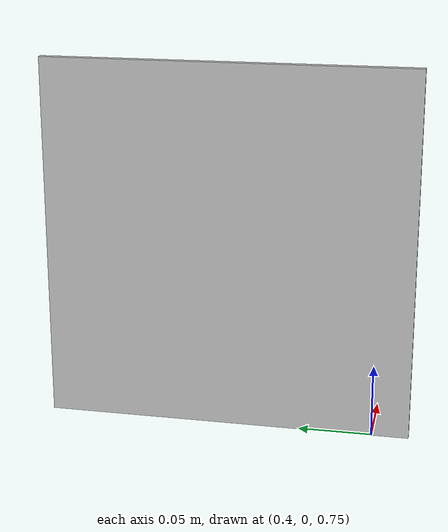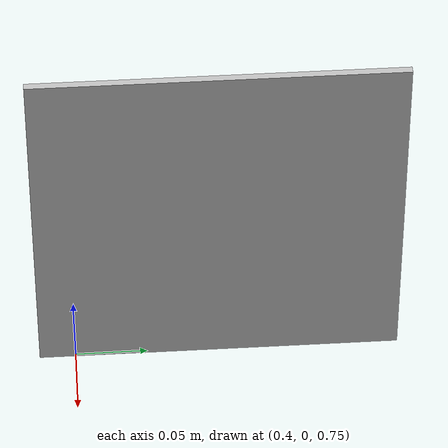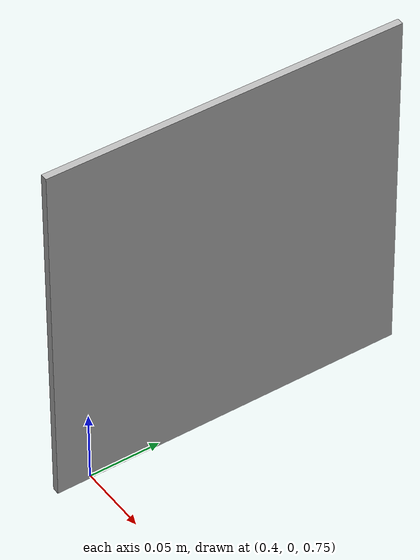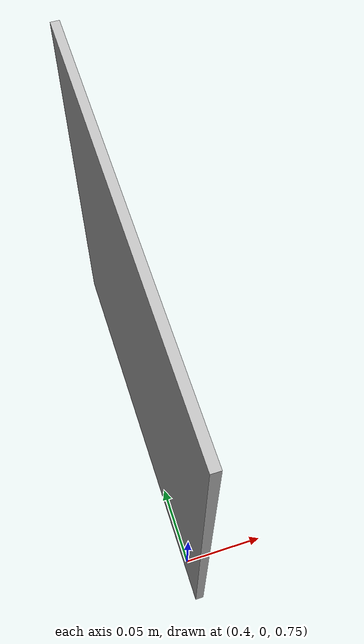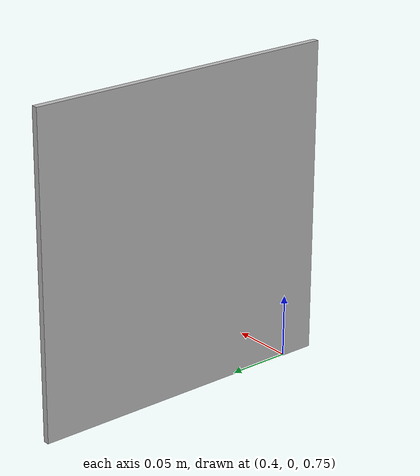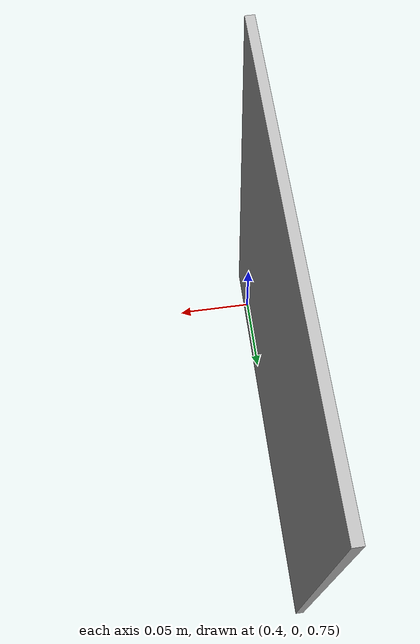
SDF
<?xml version="1.0" ?>
<sdf version="1.4">
	<world name="default">
 		<include>
 			<uri>model://ground_plane</uri>
 		</include>
 		<include>
 			<uri>model://sun</uri>
 		</include>
 		<include>
 			<uri>model://tag_01</uri>
			<pose>0.4 0.1 0.751 0 0 0</pose>
 		</include>
 </world>
</sdf>

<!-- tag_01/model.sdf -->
<sdf version="1.6">
  <model name="tag_01">
    <static>true</static>
    <link name="link">
      <visual name="visual">
        <geometry>
          <mesh>
            <uri>tag.dae</uri>
          <scale>0.5 0.5 0.5</scale></mesh>
        </geometry>
      </visual>
    </link>
  </model>
</sdf>
